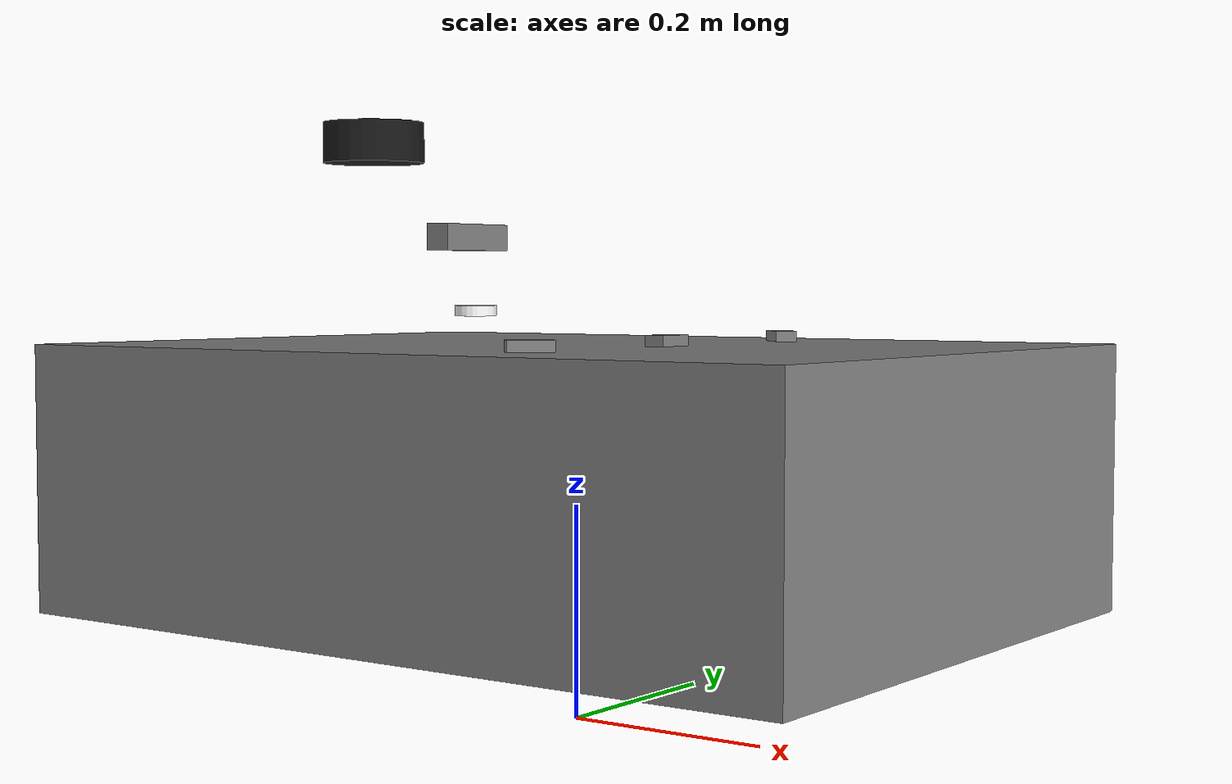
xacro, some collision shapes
<?xml version="1.0"?>
<robot xmlns:xacro="http://ros.org/wiki/xacro" >

    <xacro:property name="base_mass" value="37.0"/>
    <xacro:property name="base_x" value="0.80"/>
    <xacro:property name="base_y" value="0.60"/>
    <xacro:property name="base_z" value="0.25"/>

    <xacro:property name="track_offset_y" value="0.25"/>
    <xacro:property name="drive_wheel_radius" value="0.08"/>
    <xacro:property name="drive_wheel_width" value="0.015"/>

    <link name="base_footprint"/>

    <joint name="base_joint" type="fixed">
        <parent link="base_footprint"/>
        <child link="base_link"/>
        <origin xyz="0 0 0" rpy="0 0 0"/>
    </joint>

    <link name="base_link">
        <visual name="base_link">
            <origin xyz="0 0 0.1" rpy="0 0 0"/>
            <geometry>
                <mesh filename="package://mower_bot_description/meshes/Chassis_Center_link.STL" />
            </geometry>
            <material name="grey"><color rgba="0.5 0.5 0.5 1.0"/></material>
        </visual>
        <collision>
            <origin xyz="0 0 0.225" rpy="0 0 0"/>
            <geometry>
                <box size="${base_x} ${base_y} ${base_z}"/>
            </geometry>
        </collision>
        <inertial>
            <origin xyz="0 0 0.12" rpy="0 0 0"/>
            <mass value="${base_mass}"/>
            <inertia
                ixx="${(base_mass/12) * (base_y*base_y + base_z*base_z)}" ixy="0" ixz="0"
                iyy="${(base_mass/12) * (base_x*base_x + base_z*base_z)}" iyz="0"
                izz="${(base_mass/12) * (base_x*base_x + base_y*base_y)}"
            />
        </inertial>
    </link>

    <xacro:macro name="drive_wheel" params="prefix location reflect_x reflect_y offset_x">
        <link name="${prefix}_${location}_wheel">
            <collision>
                <geometry>
                    <cylinder radius="${drive_wheel_radius}" length="${drive_wheel_width}"/>
                </geometry>
                <surface>
                    <friction>
                        <ode>
                            <mu>2.0</mu>
                            <mu2>0.001</mu2>
                            <fdir1>1 0 0</fdir1>
                            <slip1>0.0</slip1>
                            <slip2>0.0</slip2>
                        </ode>
                    </friction>
                    <contact>
                        <ode>
                            <kp>10000000.0</kp>
                            <kd>1.0</kd>
                        </ode>
                    </contact>
                </surface>
            </collision>
            <inertial>
                <mass value="2.0"/>
                <inertia ixx="0.01" ixy="0" ixz="0" iyy="0.01" iyz="0" izz="0.01"/>
            </inertial>
        </link>

        <joint name="${prefix}_${location}_wheel_joint" type="continuous">
            <parent link="base_link"/>
            <child link="${prefix}_${location}_wheel"/>
            <origin xyz="${offset_x} ${reflect_y * track_offset_y} -0.001" rpy="-1.5708 0 0"/>
            <axis xyz="0 0 1"/>
        </joint>
    </xacro:macro>

    <xacro:macro name="passive_wheel" params="prefix location reflect_y offset_x radius offset_z">
        <link name="${prefix}_${location}_wheel">
            <collision>
                <geometry>
                    <sphere radius="${radius}"/>
                </geometry>
                <surface>
                    <friction>
                        <ode>
                            <mu>0.5</mu>
                            <mu2>0.001</mu2>
                            <slip1>1.0</slip1>
                            <slip2>1.0</slip2>
                        </ode>
                    </friction>
                </surface>
            </collision>
            <inertial>
                <mass value="0.5"/>
                <inertia ixx="0.001" ixy="0" ixz="0" iyy="0.001" iyz="0" izz="0.001"/>
            </inertial>
        </link>

        <joint name="${prefix}_${location}_wheel_joint" type="continuous">
            <parent link="base_link"/>
            <child link="${prefix}_${location}_wheel"/>
            <origin xyz="${offset_x} ${reflect_y * track_offset_y} ${offset_z}" rpy="-1.5708 0 0"/>
            <axis xyz="0 0 1"/>
        </joint>
    </xacro:macro>

    <xacro:passive_wheel prefix="front" location="left"  reflect_y="1"  offset_x="0.32" radius="0.08" offset_z="-0.001"/>
    <xacro:passive_wheel prefix="mid"   location="left"  reflect_y="1"  offset_x="0.0"  radius="0.05" offset_z="-0.031"/>
    <xacro:drive_wheel   prefix="rear"  location="left"  reflect_x="-1" reflect_y="1" offset_x="-0.32"/>

    <xacro:passive_wheel prefix="front" location="right" reflect_y="-1" offset_x="0.32" radius="0.08" offset_z="-0.001"/>
    <xacro:passive_wheel prefix="mid"   location="right" reflect_y="-1" offset_x="0.0"  radius="0.05" offset_z="-0.031"/>
    <xacro:drive_wheel   prefix="rear"  location="right" reflect_x="-1" reflect_y="-1" offset_x="-0.32"/>

    <xacro:macro name="visual_track" params="prefix reflect filename">
        <link name="${prefix}_track_visual">
            <visual>
                <origin xyz="0 0 0.03" rpy="1.5708 0 3.14"/>
                <geometry>
                     <mesh filename="package://mower_bot_description/meshes/${filename}" scale="0.001 0.001 0.001"/>
                </geometry>
                <material name="black">
                    <color rgba="0.1 0.1 0.1 1.0"/>
                </material>
            </visual>
            <collision>
                <origin xyz="0 0 0.03" rpy="1.5708 0 3.14"/>
                <geometry>
                    <mesh filename="package://mower_bot_description/meshes/${filename}" scale="0.001 0.001 0.001"/>
                </geometry>
            </collision>
            <inertial>
                <mass value="2.0"/>
                <inertia ixx="0.01" ixy="0" ixz="0" iyy="0.01" iyz="0" izz="0.01"/>
            </inertial>
        </link>

        <joint name="${prefix}_track_joint" type="fixed">
            <parent link="base_link"/>
            <child link="${prefix}_track_visual"/>
            <origin xyz="0 0.5 0" rpy="0 0 0"/>
        </joint>
    </xacro:macro>

    <!-- ปิดการใช้งาน visual_track เก่าทิ้งทั้งหมด เพื่อไม่ให้ภาพซ้อนกับตัวรถก้อนใหญ่ครับ -->

    <link name="lidar_link">
        <visual>
            <geometry>
                <cylinder radius="0.05" length="0.04"/>
            </geometry>
            <material name="black">
                <color rgba="0.1 0.1 0.1 1.0"/>
            </material>
        </visual>
        <collision>
            <geometry>
                <cylinder radius="0.05" length="0.04"/>
            </geometry>
        </collision>
        <inertial>
            <mass value="0.1"/>
            <inertia ixx="0.0001" ixy="0" ixz="0" iyy="0.0001" iyz="0" izz="0.0001"/>
        </inertial>
    </link>

    <joint name="lidar_mount_joint" type="fixed">
        <parent link="base_link"/>
        <child link="lidar_link"/>
        <origin xyz="-0.25 0 0.545" rpy="0 0 0"/>
    </joint>

    <link name="laser_frame">
        <visual>
            <geometry><box size="0.01 0.01 0.01"/></geometry>
            <material name="black"/>
        </visual>
    </link>

    <joint name="laser_joint" type="fixed">
        <parent link="lidar_link"/>
        <child link="laser_frame"/>
        <origin xyz="0 0 0.0" rpy="0 0 3.1415"/> </joint>

    <link name="imu_link"/>
    <joint name="imu_joint" type="fixed">
        <parent link="base_link"/>
        <child link="imu_link"/>
        <origin xyz="0 0 0" rpy="0 0 0"/>
    </joint>

    <link name="camera_link">
        <visual>
            <geometry><box size="0.025 0.09 0.025"/></geometry>
            <material name="grey"><color rgba="0.5 0.5 0.5 1.0"/></material>
        </visual>
        <collision>
            <geometry><box size="0.025 0.09 0.025"/></geometry>
        </collision>
        <inertial>
            <mass value="0.1"/>
            <inertia ixx="0.0001" ixy="0" ixz="0" iyy="0.0001" iyz="0" izz="0.0001"/>
        </inertial>
    </link>

    <joint name="camera_joint" type="fixed">
        <parent link="base_link"/>
        <child link="camera_link"/>
        <origin xyz="-0.13 0 0.45" rpy="0 0 0"/>
    </joint>

    <link name="camera_depth_frame"/>
    <joint name="camera_depth_joint" type="fixed">
        <parent link="camera_link"/>
        <child link="camera_depth_frame"/>
        <origin xyz="0 0 0" rpy="-1.5708 0 -1.5708"/>
    </joint>

    <link name="gps_link">
        <visual>
            <geometry><cylinder radius="0.02" length="0.01"/></geometry>
            <material name="white"><color rgba="1 1 1 1.0"/></material>
        </visual>
        <collision>
            <geometry><cylinder radius="0.02" length="0.01"/></geometry>
        </collision>
        <inertial>
            <mass value="0.05"/>
            <inertia ixx="0.0001" ixy="0" ixz="0" iyy="0.0001" iyz="0" izz="0.0001"/>
        </inertial>
    </link>

    <joint name="gps_joint" type="fixed">
        <parent link="base_link"/>
        <child link="gps_link"/>
        <origin xyz="-0.12 0 0.38" rpy="0 0 0"/>
    </joint>

    <!-- Ultrasonic Sensors -->
    <!-- Center Sonar -->
    <link name="sonar_center">
        <visual><geometry><box size="0.02 0.04 0.02"/></geometry><material name="grey"/></visual>
    </link>
    <joint name="sonar_center_joint" type="fixed">
        <parent link="base_link"/>
        <child link="sonar_center"/>
        <origin xyz="0.1 0 0.35" rpy="0 0 0"/>
    </joint>

    <!-- Left Sonar -->
    <link name="sonar_left">
        <visual><geometry><box size="0.02 0.04 0.02"/></geometry><material name="grey"/></visual>
    </link>
    <joint name="sonar_left_joint" type="fixed">
        <parent link="base_link"/>
        <child link="sonar_left"/>
        <!-- Pointing 45 degrees left (0.785 rad) -->
        <origin xyz="0.1 0.2 0.35" rpy="0 0 0.7854"/>
    </joint>

    <!-- Right Sonar -->
    <link name="sonar_right">
        <visual><geometry><box size="0.02 0.04 0.02"/></geometry><material name="grey"/></visual>
    </link>
    <joint name="sonar_right_joint" type="fixed">
        <parent link="base_link"/>
        <child link="sonar_right"/>
        <!-- Pointing 45 degrees right (-0.785 rad) -->
        <origin xyz="0.1 -0.2 0.35" rpy="0 0 -0.7854"/>
    </joint>

</robot>
